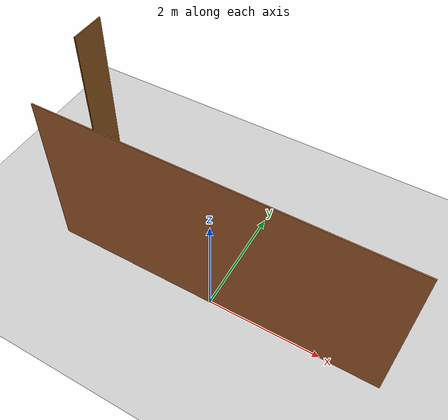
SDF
<?xml version="1.0" ?>
<sdf version="1.8">
  <world name="drawing_world">
    <physics name="1ms" type="ignored">
      <max_step_size>0.001</max_step_size>
      <real_time_factor>1.0</real_time_factor>
    </physics>
    <plugin name="gz::sim::systems::Physics" filename="gz-sim-physics-system"/>
    <plugin name="gz::sim::systems::UserCommands" filename="gz-sim-user-commands-system"/>
    <plugin name="gz::sim::systems::SceneBroadcaster" filename="gz-sim-scene-broadcaster-system"/>

    <light type="directional" name="sun">
      <cast_shadows>true</cast_shadows>
      <pose>0 0 10 0 0 0</pose>
      <diffuse>0.8 0.8 0.8 1</diffuse>
      <specular>0.2 0.2 0.2 1</specular>
      <direction>-0.5 0.1 -0.9</direction>
    </light>

    <model name="ground_plane">
      <static>true</static>
      <link name="link">
        <collision name="collision">
          <geometry><plane><normal>0 0 1</normal></plane></geometry>
        </collision>
        <visual name="visual">
          <geometry><plane><normal>0 0 1</normal></plane></geometry>
          <material><ambient>0.8 0.8 0.8 1</ambient></material>
        </visual>
      </link>
    </model>

    <!-- Main Outer Frame (Back Panel) -->
    <model name="main_structure">
      <static>true</static>
      <pose>0 0 1.5 0 0 0</pose> <!-- Center of the 3m tall wall -->
      <link name="back_wall">
        <visual name="visual">
          <geometry><box><size>6.0 0.018 3.0</size></box></geometry>
          <material><ambient>0.7 0.4 0.2 1</ambient><diffuse>0.7 0.4 0.2 1</diffuse></material>
        </visual>
        <collision name="collision">
          <geometry><box><size>6.0 0.018 3.0</size></box></geometry>
        </collision>
      </link>

      <!-- Example Shelf (the one at 1118mm from left) -->
      <!-- Pose is relative to model center: X: -3.0 (left edge) + 1.118 -->
      <link name="shelf_1">
        <pose>-1.882 0.25 1.5 0 0 0</pose>
        <visual name="visual">
          <geometry><box><size>0.018 0.5 3.0</size></box></geometry>
          <material><ambient>0.5 0.3 0.1 1</ambient></material>
        </visual>
      </link>
    </model>
  </world>
</sdf><?xml version="1.0" ?>
<sdf version="1.8">
  <world name="drawing_world">
    <physics name="1ms" type="ignored">
      <max_step_size>0.001</max_step_size>
      <real_time_factor>1.0</real_time_factor>
    </physics>
    <plugin name="gz::sim::systems::Physics" filename="gz-sim-physics-system"/>
    <plugin name="gz::sim::systems::UserCommands" filename="gz-sim-user-commands-system"/>
    <plugin name="gz::sim::systems::SceneBroadcaster" filename="gz-sim-scene-broadcaster-system"/>

    <light type="directional" name="sun">
      <cast_shadows>true</cast_shadows>
      <pose>0 0 10 0 0 0</pose>
      <diffuse>0.8 0.8 0.8 1</diffuse>
      <specular>0.2 0.2 0.2 1</specular>
      <direction>-0.5 0.1 -0.9</direction>
    </light>

    <model name="ground_plane">
      <static>true</static>
      <link name="link">
        <collision name="collision">
          <geometry><plane><normal>0 0 1</normal></plane></geometry>
        </collision>
        <visual name="visual">
          <geometry><plane><normal>0 0 1</normal></plane></geometry>
          <material><ambient>0.8 0.8 0.8 1</ambient></material>
        </visual>
      </link>
    </model>

    <!-- Main Outer Frame (Back Panel) -->
    <model name="main_structure">
      <static>true</static>
      <pose>0 0 1.5 0 0 0</pose> <!-- Center of the 3m tall wall -->
      <link name="back_wall">
        <visual name="visual">
          <geometry><box><size>6.0 0.018 3.0</size></box></geometry>
          <material><ambient>0.7 0.4 0.2 1</ambient><diffuse>0.7 0.4 0.2 1</diffuse></material>
        </visual>
        <collision name="collision">
          <geometry><box><size>6.0 0.018 3.0</size></box></geometry>
        </collision>
      </link>

      <!-- Example Shelf (the one at 1118mm from left) -->
      <!-- Pose is relative to model center: X: -3.0 (left edge) + 1.118 -->
      <link name="shelf_1">
        <pose>-1.882 0.25 1.5 0 0 0</pose>
        <visual name="visual">
          <geometry><box><size>0.018 0.5 3.0</size></box></geometry>
          <material><ambient>0.5 0.3 0.1 1</ambient></material>
        </visual>
      </link>
    </model>
  </world>
</sdf>
